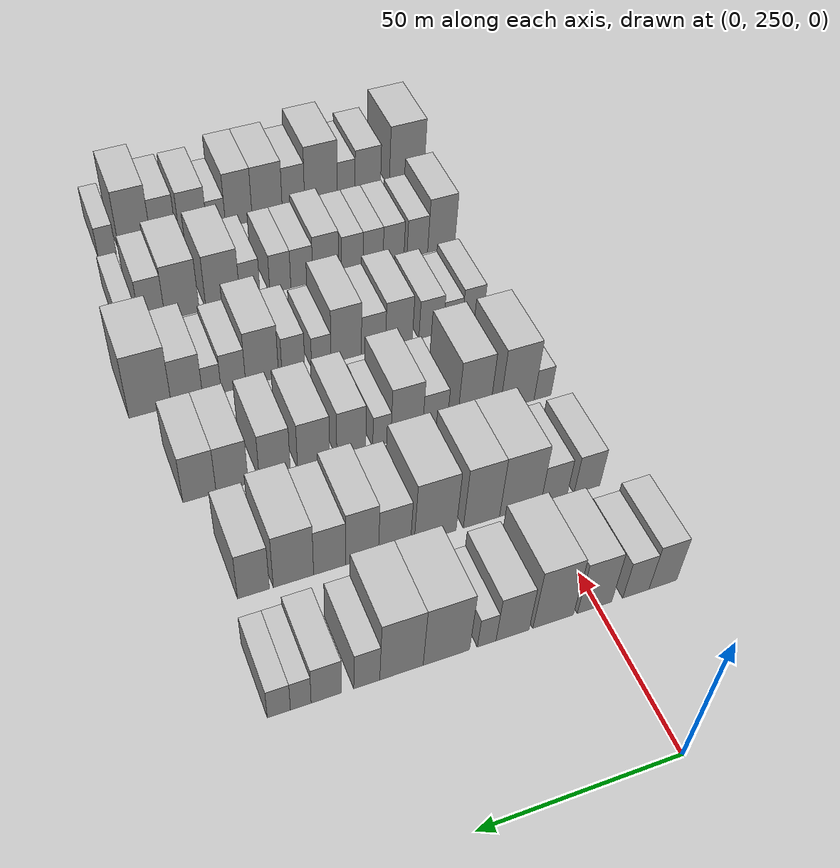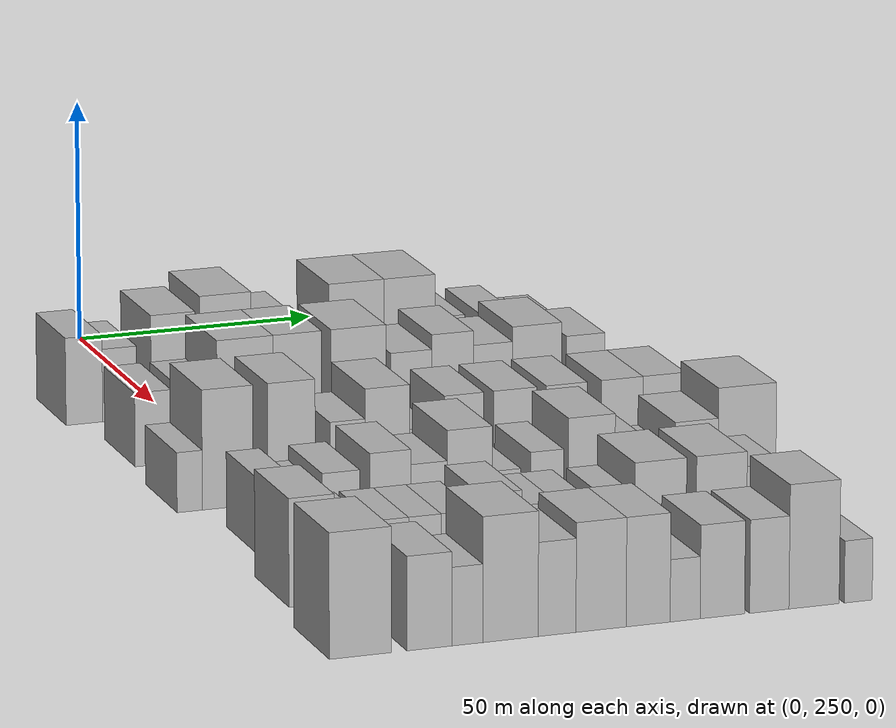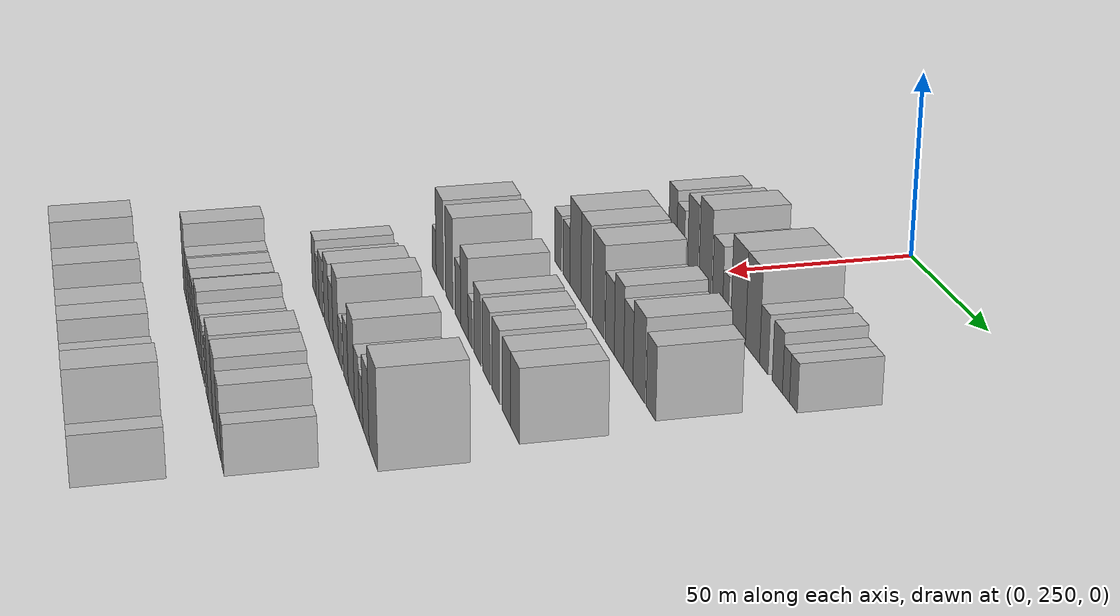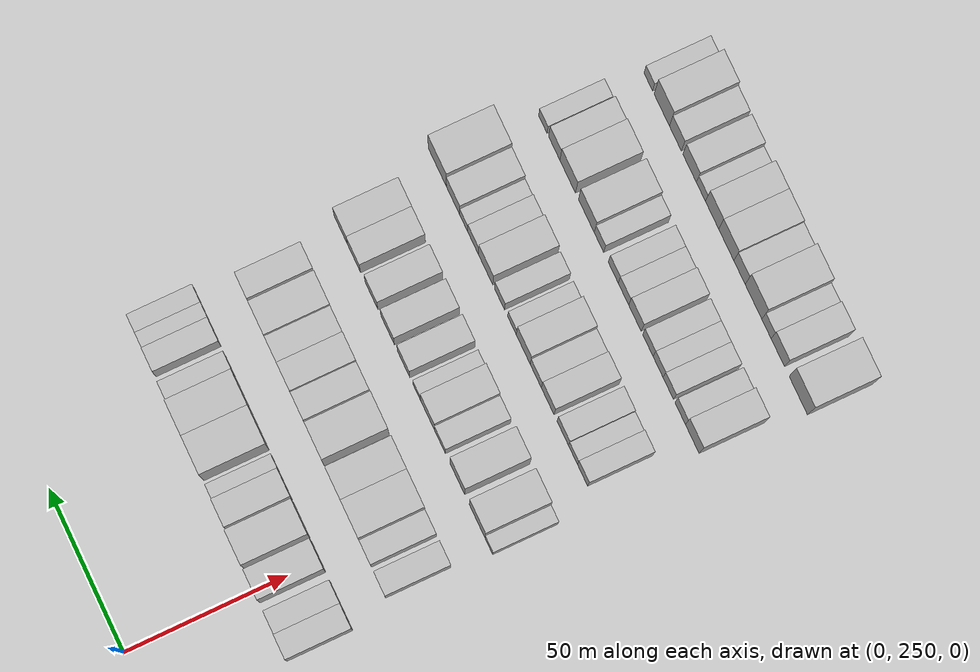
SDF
<sdf version="1.6">
 <world name="default">
  <model name="building_87">
   <static>1</static>
   <pose>50.0000 232.3564 0 0.000000 0.000000 0.000000</pose>
   <link name="link">
    <pose>0 0 9.00 0 0 0</pose>
    <collision name="collision"><geometry><box><size>20.0000 7.6379 18.0000</size></box></geometry></collision>
    <visual name="visual">
     <cast_shadows>0</cast_shadows>
     <geometry><box><size>20.0000 7.6379 18.0000</size></box></geometry>
     <material>
      <script>
       <uri>model://HANNAS_wall/materials/scripts</uri>
       <uri>model://HANNAS_wall/materials/textures</uri>
       <name>vrc/HANNAS_wall</name>
      </script>
     </material>
    </visual>
   </link>
  </model>
  <model name="building_88">
   <static>1</static>
   <pose>50.0000 239.7600 0 0.000000 0.000000 0.000000</pose>
   <link name="link">
    <pose>0 0 7.50 0 0 0</pose>
    <collision name="collision"><geometry><box><size>20.0000 7.1695 15.0000</size></box></geometry></collision>
    <visual name="visual">
     <cast_shadows>0</cast_shadows>
     <geometry><box><size>20.0000 7.1695 15.0000</size></box></geometry>
     <material>
      <script>
       <uri>model://HANNAS_wall/materials/scripts</uri>
       <uri>model://HANNAS_wall/materials/textures</uri>
       <name>vrc/HANNAS_wall</name>
      </script>
     </material>
    </visual>
   </link>
  </model>
  <model name="building_89">
   <static>1</static>
   <pose>50.0000 250.9808 0 0.000000 0.000000 0.000000</pose>
   <link name="link">
    <pose>0 0 10.50 0 0 0</pose>
    <collision name="collision"><geometry><box><size>20.0000 9.2720 21.0000</size></box></geometry></collision>
    <visual name="visual">
     <cast_shadows>0</cast_shadows>
     <geometry><box><size>20.0000 9.2720 21.0000</size></box></geometry>
     <material>
      <script>
       <uri>model://HANNAS_wall/materials/scripts</uri>
       <uri>model://HANNAS_wall/materials/textures</uri>
       <name>vrc/HANNAS_wall</name>
      </script>
     </material>
    </visual>
   </link>
  </model>
  <model name="building_90">
   <static>1</static>
   <pose>50.0000 261.9958 0 0.000000 0.000000 0.000000</pose>
   <link name="link">
    <pose>0 0 12.00 0 0 0</pose>
    <collision name="collision"><geometry><box><size>20.0000 10.7581 24.0000</size></box></geometry></collision>
    <visual name="visual">
     <cast_shadows>0</cast_shadows>
     <geometry><box><size>20.0000 10.7581 24.0000</size></box></geometry>
     <material>
      <script>
       <uri>model://HANNAS_wall/materials/scripts</uri>
       <uri>model://HANNAS_wall/materials/textures</uri>
       <name>vrc/HANNAS_wall</name>
      </script>
     </material>
    </visual>
   </link>
  </model>
  <model name="building_91">
   <static>1</static>
   <pose>50.0000 272.6833 0 0.000000 0.000000 0.000000</pose>
   <link name="link">
    <pose>0 0 9.00 0 0 0</pose>
    <collision name="collision"><geometry><box><size>20.0000 8.6168 18.0000</size></box></geometry></collision>
    <visual name="visual">
     <cast_shadows>0</cast_shadows>
     <geometry><box><size>20.0000 8.6168 18.0000</size></box></geometry>
     <material>
      <script>
       <uri>model://HANNAS_wall/materials/scripts</uri>
       <uri>model://HANNAS_wall/materials/textures</uri>
       <name>vrc/HANNAS_wall</name>
      </script>
     </material>
    </visual>
   </link>
  </model>
  <model name="building_92">
   <static>1</static>
   <pose>50.0000 279.3937 0 0.000000 0.000000 0.000000</pose>
   <link name="link">
    <pose>0 0 6.00 0 0 0</pose>
    <collision name="collision"><geometry><box><size>20.0000 4.8040 12.0000</size></box></geometry></collision>
    <visual name="visual">
     <cast_shadows>0</cast_shadows>
     <geometry><box><size>20.0000 4.8040 12.0000</size></box></geometry>
     <material>
      <script>
       <uri>model://HANNAS_wall/materials/scripts</uri>
       <uri>model://HANNAS_wall/materials/textures</uri>
       <name>vrc/HANNAS_wall</name>
      </script>
     </material>
    </visual>
   </link>
  </model>
  <model name="building_93">
   <static>1</static>
   <pose>50.0000 289.6886 0 0.000000 0.000000 0.000000</pose>
   <link name="link">
    <pose>0 0 12.00 0 0 0</pose>
    <collision name="collision"><geometry><box><size>20.0000 11.7859 24.0000</size></box></geometry></collision>
    <visual name="visual">
     <cast_shadows>0</cast_shadows>
     <geometry><box><size>20.0000 11.7859 24.0000</size></box></geometry>
     <material>
      <script>
       <uri>model://HANNAS_wall/materials/scripts</uri>
       <uri>model://HANNAS_wall/materials/textures</uri>
       <name>vrc/HANNAS_wall</name>
      </script>
     </material>
    </visual>
   </link>
  </model>
  <model name="building_94">
   <static>1</static>
   <pose>50.0000 301.0021 0 0.000000 0.000000 0.000000</pose>
   <link name="link">
    <pose>0 0 12.00 0 0 0</pose>
    <collision name="collision"><geometry><box><size>20.0000 10.8413 24.0000</size></box></geometry></collision>
    <visual name="visual">
     <cast_shadows>0</cast_shadows>
     <geometry><box><size>20.0000 10.8413 24.0000</size></box></geometry>
     <material>
      <script>
       <uri>model://HANNAS_wall/materials/scripts</uri>
       <uri>model://HANNAS_wall/materials/textures</uri>
       <name>vrc/HANNAS_wall</name>
      </script>
     </material>
    </visual>
   </link>
  </model>
  <model name="building_95">
   <static>1</static>
   <pose>50.0000 309.6219 0 0.000000 0.000000 0.000000</pose>
   <link name="link">
    <pose>0 0 7.50 0 0 0</pose>
    <collision name="collision"><geometry><box><size>20.0000 6.3983 15.0000</size></box></geometry></collision>
    <visual name="visual">
     <cast_shadows>0</cast_shadows>
     <geometry><box><size>20.0000 6.3983 15.0000</size></box></geometry>
     <material>
      <script>
       <uri>model://HANNAS_wall/materials/scripts</uri>
       <uri>model://HANNAS_wall/materials/textures</uri>
       <name>vrc/HANNAS_wall</name>
      </script>
     </material>
    </visual>
   </link>
  </model>
  <model name="building_96">
   <static>1</static>
   <pose>50.0000 319.5005 0 0.000000 0.000000 0.000000</pose>
   <link name="link">
    <pose>0 0 7.50 0 0 0</pose>
    <collision name="collision"><geometry><box><size>20.0000 7.3589 15.0000</size></box></geometry></collision>
    <visual name="visual">
     <cast_shadows>0</cast_shadows>
     <geometry><box><size>20.0000 7.3589 15.0000</size></box></geometry>
     <material>
      <script>
       <uri>model://HANNAS_wall/materials/scripts</uri>
       <uri>model://HANNAS_wall/materials/textures</uri>
       <name>vrc/HANNAS_wall</name>
      </script>
     </material>
    </visual>
   </link>
  </model>
  <model name="building_97">
   <static>1</static>
   <pose>50.0000 325.6646 0 0.000000 0.000000 0.000000</pose>
   <link name="link">
    <pose>0 0 6.00 0 0 0</pose>
    <collision name="collision"><geometry><box><size>20.0000 4.9692 12.0000</size></box></geometry></collision>
    <visual name="visual">
     <cast_shadows>0</cast_shadows>
     <geometry><box><size>20.0000 4.9692 12.0000</size></box></geometry>
     <material>
      <script>
       <uri>model://HANNAS_wall/materials/scripts</uri>
       <uri>model://HANNAS_wall/materials/textures</uri>
       <name>vrc/HANNAS_wall</name>
      </script>
     </material>
    </visual>
   </link>
  </model>
  <model name="building_98">
   <static>1</static>
   <pose>50.0000 330.9107 0 0.000000 0.000000 0.000000</pose>
   <link name="link">
    <pose>0 0 6.00 0 0 0</pose>
    <collision name="collision"><geometry><box><size>20.0000 5.5231 12.0000</size></box></geometry></collision>
    <visual name="visual">
     <cast_shadows>0</cast_shadows>
     <geometry><box><size>20.0000 5.5231 12.0000</size></box></geometry>
     <material>
      <script>
       <uri>model://HANNAS_wall/materials/scripts</uri>
       <uri>model://HANNAS_wall/materials/textures</uri>
       <name>vrc/HANNAS_wall</name>
      </script>
     </material>
    </visual>
   </link>
  </model>
  <model name="building_210">
   <static>1</static>
   <pose>82.0000 236.5430 0 0.000000 0.000000 0.000000</pose>
   <link name="link">
    <pose>0 0 7.50 0 0 0</pose>
    <collision name="collision"><geometry><box><size>20.0000 7.4599 15.0000</size></box></geometry></collision>
    <visual name="visual">
     <cast_shadows>0</cast_shadows>
     <geometry><box><size>20.0000 7.4599 15.0000</size></box></geometry>
     <material>
      <script>
       <uri>model://HANNAS_wall/materials/scripts</uri>
       <uri>model://HANNAS_wall/materials/textures</uri>
       <name>vrc/HANNAS_wall</name>
      </script>
     </material>
    </visual>
   </link>
  </model>
  <model name="building_211">
   <static>1</static>
   <pose>82.0000 246.0062 0 0.000000 0.000000 0.000000</pose>
   <link name="link">
    <pose>0 0 7.50 0 0 0</pose>
    <collision name="collision"><geometry><box><size>20.0000 7.4666 15.0000</size></box></geometry></collision>
    <visual name="visual">
     <cast_shadows>0</cast_shadows>
     <geometry><box><size>20.0000 7.4666 15.0000</size></box></geometry>
     <material>
      <script>
       <uri>model://HANNAS_wall/materials/scripts</uri>
       <uri>model://HANNAS_wall/materials/textures</uri>
       <name>vrc/HANNAS_wall</name>
      </script>
     </material>
    </visual>
   </link>
  </model>
  <model name="building_212">
   <static>1</static>
   <pose>82.0000 255.5413 0 0.000000 0.000000 0.000000</pose>
   <link name="link">
    <pose>0 0 12.00 0 0 0</pose>
    <collision name="collision"><geometry><box><size>20.0000 11.6035 24.0000</size></box></geometry></collision>
    <visual name="visual">
     <cast_shadows>0</cast_shadows>
     <geometry><box><size>20.0000 11.6035 24.0000</size></box></geometry>
     <material>
      <script>
       <uri>model://HANNAS_wall/materials/scripts</uri>
       <uri>model://HANNAS_wall/materials/textures</uri>
       <name>vrc/HANNAS_wall</name>
      </script>
     </material>
    </visual>
   </link>
  </model>
  <model name="building_213">
   <static>1</static>
   <pose>82.0000 266.3607 0 0.000000 0.000000 0.000000</pose>
   <link name="link">
    <pose>0 0 12.00 0 0 0</pose>
    <collision name="collision"><geometry><box><size>20.0000 10.0354 24.0000</size></box></geometry></collision>
    <visual name="visual">
     <cast_shadows>0</cast_shadows>
     <geometry><box><size>20.0000 10.0354 24.0000</size></box></geometry>
     <material>
      <script>
       <uri>model://HANNAS_wall/materials/scripts</uri>
       <uri>model://HANNAS_wall/materials/textures</uri>
       <name>vrc/HANNAS_wall</name>
      </script>
     </material>
    </visual>
   </link>
  </model>
  <model name="building_214">
   <static>1</static>
   <pose>82.0000 279.0757 0 0.000000 0.000000 0.000000</pose>
   <link name="link">
    <pose>0 0 12.00 0 0 0</pose>
    <collision name="collision"><geometry><box><size>20.0000 11.3946 24.0000</size></box></geometry></collision>
    <visual name="visual">
     <cast_shadows>0</cast_shadows>
     <geometry><box><size>20.0000 11.3946 24.0000</size></box></geometry>
     <material>
      <script>
       <uri>model://HANNAS_wall/materials/scripts</uri>
       <uri>model://HANNAS_wall/materials/textures</uri>
       <name>vrc/HANNAS_wall</name>
      </script>
     </material>
    </visual>
   </link>
  </model>
  <model name="building_215">
   <static>1</static>
   <pose>82.0000 290.0755 0 0.000000 0.000000 0.000000</pose>
   <link name="link">
    <pose>0 0 9.00 0 0 0</pose>
    <collision name="collision"><geometry><box><size>20.0000 8.6048 18.0000</size></box></geometry></collision>
    <visual name="visual">
     <cast_shadows>0</cast_shadows>
     <geometry><box><size>20.0000 8.6048 18.0000</size></box></geometry>
     <material>
      <script>
       <uri>model://HANNAS_wall/materials/scripts</uri>
       <uri>model://HANNAS_wall/materials/textures</uri>
       <name>vrc/HANNAS_wall</name>
      </script>
     </material>
    </visual>
   </link>
  </model>
  <model name="building_216">
   <static>1</static>
   <pose>82.0000 298.7338 0 0.000000 0.000000 0.000000</pose>
   <link name="link">
    <pose>0 0 10.50 0 0 0</pose>
    <collision name="collision"><geometry><box><size>20.0000 8.7118 21.0000</size></box></geometry></collision>
    <visual name="visual">
     <cast_shadows>0</cast_shadows>
     <geometry><box><size>20.0000 8.7118 21.0000</size></box></geometry>
     <material>
      <script>
       <uri>model://HANNAS_wall/materials/scripts</uri>
       <uri>model://HANNAS_wall/materials/textures</uri>
       <name>vrc/HANNAS_wall</name>
      </script>
     </material>
    </visual>
   </link>
  </model>
  <model name="building_217">
   <static>1</static>
   <pose>82.0000 307.2395 0 0.000000 0.000000 0.000000</pose>
   <link name="link">
    <pose>0 0 9.00 0 0 0</pose>
    <collision name="collision"><geometry><box><size>20.0000 8.2997 18.0000</size></box></geometry></collision>
    <visual name="visual">
     <cast_shadows>0</cast_shadows>
     <geometry><box><size>20.0000 8.2997 18.0000</size></box></geometry>
     <material>
      <script>
       <uri>model://HANNAS_wall/materials/scripts</uri>
       <uri>model://HANNAS_wall/materials/textures</uri>
       <name>vrc/HANNAS_wall</name>
      </script>
     </material>
    </visual>
   </link>
  </model>
  <model name="building_218">
   <static>1</static>
   <pose>82.0000 316.5841 0 0.000000 0.000000 0.000000</pose>
   <link name="link">
    <pose>0 0 10.50 0 0 0</pose>
    <collision name="collision"><geometry><box><size>20.0000 10.3896 21.0000</size></box></geometry></collision>
    <visual name="visual">
     <cast_shadows>0</cast_shadows>
     <geometry><box><size>20.0000 10.3896 21.0000</size></box></geometry>
     <material>
      <script>
       <uri>model://HANNAS_wall/materials/scripts</uri>
       <uri>model://HANNAS_wall/materials/textures</uri>
       <name>vrc/HANNAS_wall</name>
      </script>
     </material>
    </visual>
   </link>
  </model>
  <model name="building_219">
   <static>1</static>
   <pose>82.0000 326.8329 0 0.000000 0.000000 0.000000</pose>
   <link name="link">
    <pose>0 0 9.00 0 0 0</pose>
    <collision name="collision"><geometry><box><size>20.0000 8.1081 18.0000</size></box></geometry></collision>
    <visual name="visual">
     <cast_shadows>0</cast_shadows>
     <geometry><box><size>20.0000 8.1081 18.0000</size></box></geometry>
     <material>
      <script>
       <uri>model://HANNAS_wall/materials/scripts</uri>
       <uri>model://HANNAS_wall/materials/textures</uri>
       <name>vrc/HANNAS_wall</name>
      </script>
     </material>
    </visual>
   </link>
  </model>
  <model name="building_327">
   <static>1</static>
   <pose>114.0000 233.6773 0 0.000000 0.000000 0.000000</pose>
   <link name="link">
    <pose>0 0 6.00 0 0 0</pose>
    <collision name="collision"><geometry><box><size>20.0000 5.1193 12.0000</size></box></geometry></collision>
    <visual name="visual">
     <cast_shadows>0</cast_shadows>
     <geometry><box><size>20.0000 5.1193 12.0000</size></box></geometry>
     <material>
      <script>
       <uri>model://HANNAS_wall/materials/scripts</uri>
       <uri>model://HANNAS_wall/materials/textures</uri>
       <name>vrc/HANNAS_wall</name>
      </script>
     </material>
    </visual>
   </link>
  </model>
  <model name="building_328">
   <static>1</static>
   <pose>114.0000 241.3833 0 0.000000 0.000000 0.000000</pose>
   <link name="link">
    <pose>0 0 12.00 0 0 0</pose>
    <collision name="collision"><geometry><box><size>20.0000 10.2926 24.0000</size></box></geometry></collision>
    <visual name="visual">
     <cast_shadows>0</cast_shadows>
     <geometry><box><size>20.0000 10.2926 24.0000</size></box></geometry>
     <material>
      <script>
       <uri>model://HANNAS_wall/materials/scripts</uri>
       <uri>model://HANNAS_wall/materials/textures</uri>
       <name>vrc/HANNAS_wall</name>
      </script>
     </material>
    </visual>
   </link>
  </model>
  <model name="building_329">
   <static>1</static>
   <pose>114.0000 254.3425 0 0.000000 0.000000 0.000000</pose>
   <link name="link">
    <pose>0 0 12.00 0 0 0</pose>
    <collision name="collision"><geometry><box><size>20.0000 9.6259 24.0000</size></box></geometry></collision>
    <visual name="visual">
     <cast_shadows>0</cast_shadows>
     <geometry><box><size>20.0000 9.6259 24.0000</size></box></geometry>
     <material>
      <script>
       <uri>model://HANNAS_wall/materials/scripts</uri>
       <uri>model://HANNAS_wall/materials/textures</uri>
       <name>vrc/HANNAS_wall</name>
      </script>
     </material>
    </visual>
   </link>
  </model>
  <model name="building_330">
   <static>1</static>
   <pose>114.0000 265.7468 0 0.000000 0.000000 0.000000</pose>
   <link name="link">
    <pose>0 0 7.50 0 0 0</pose>
    <collision name="collision"><geometry><box><size>20.0000 7.1826 15.0000</size></box></geometry></collision>
    <visual name="visual">
     <cast_shadows>0</cast_shadows>
     <geometry><box><size>20.0000 7.1826 15.0000</size></box></geometry>
     <material>
      <script>
       <uri>model://HANNAS_wall/materials/scripts</uri>
       <uri>model://HANNAS_wall/materials/textures</uri>
       <name>vrc/HANNAS_wall</name>
      </script>
     </material>
    </visual>
   </link>
  </model>
  <model name="building_331">
   <static>1</static>
   <pose>114.0000 273.8996 0 0.000000 0.000000 0.000000</pose>
   <link name="link">
    <pose>0 0 10.50 0 0 0</pose>
    <collision name="collision"><geometry><box><size>20.0000 9.1229 21.0000</size></box></geometry></collision>
    <visual name="visual">
     <cast_shadows>0</cast_shadows>
     <geometry><box><size>20.0000 9.1229 21.0000</size></box></geometry>
     <material>
      <script>
       <uri>model://HANNAS_wall/materials/scripts</uri>
       <uri>model://HANNAS_wall/materials/textures</uri>
       <name>vrc/HANNAS_wall</name>
      </script>
     </material>
    </visual>
   </link>
  </model>
  <model name="building_332">
   <static>1</static>
   <pose>114.0000 281.0257 0 0.000000 0.000000 0.000000</pose>
   <link name="link">
    <pose>0 0 6.00 0 0 0</pose>
    <collision name="collision"><geometry><box><size>20.0000 5.1295 12.0000</size></box></geometry></collision>
    <visual name="visual">
     <cast_shadows>0</cast_shadows>
     <geometry><box><size>20.0000 5.1295 12.0000</size></box></geometry>
     <material>
      <script>
       <uri>model://HANNAS_wall/materials/scripts</uri>
       <uri>model://HANNAS_wall/materials/textures</uri>
       <name>vrc/HANNAS_wall</name>
      </script>
     </material>
    </visual>
   </link>
  </model>
  <model name="building_333">
   <static>1</static>
   <pose>114.0000 289.6596 0 0.000000 0.000000 0.000000</pose>
   <link name="link">
    <pose>0 0 9.00 0 0 0</pose>
    <collision name="collision"><geometry><box><size>20.0000 8.1382 18.0000</size></box></geometry></collision>
    <visual name="visual">
     <cast_shadows>0</cast_shadows>
     <geometry><box><size>20.0000 8.1382 18.0000</size></box></geometry>
     <material>
      <script>
       <uri>model://HANNAS_wall/materials/scripts</uri>
       <uri>model://HANNAS_wall/materials/textures</uri>
       <name>vrc/HANNAS_wall</name>
      </script>
     </material>
    </visual>
   </link>
  </model>
  <model name="building_334">
   <static>1</static>
   <pose>114.0000 300.1911 0 0.000000 0.000000 0.000000</pose>
   <link name="link">
    <pose>0 0 9.00 0 0 0</pose>
    <collision name="collision"><geometry><box><size>20.0000 8.9248 18.0000</size></box></geometry></collision>
    <visual name="visual">
     <cast_shadows>0</cast_shadows>
     <geometry><box><size>20.0000 8.9248 18.0000</size></box></geometry>
     <material>
      <script>
       <uri>model://HANNAS_wall/materials/scripts</uri>
       <uri>model://HANNAS_wall/materials/textures</uri>
       <name>vrc/HANNAS_wall</name>
      </script>
     </material>
    </visual>
   </link>
  </model>
  <model name="building_335">
   <static>1</static>
   <pose>114.0000 310.8947 0 0.000000 0.000000 0.000000</pose>
   <link name="link">
    <pose>0 0 9.00 0 0 0</pose>
    <collision name="collision"><geometry><box><size>20.0000 8.4823 18.0000</size></box></geometry></collision>
    <visual name="visual">
     <cast_shadows>0</cast_shadows>
     <geometry><box><size>20.0000 8.4823 18.0000</size></box></geometry>
     <material>
      <script>
       <uri>model://HANNAS_wall/materials/scripts</uri>
       <uri>model://HANNAS_wall/materials/textures</uri>
       <name>vrc/HANNAS_wall</name>
      </script>
     </material>
    </visual>
   </link>
  </model>
  <model name="building_336">
   <static>1</static>
   <pose>114.0000 322.4674 0 0.000000 0.000000 0.000000</pose>
   <link name="link">
    <pose>0 0 9.00 0 0 0</pose>
    <collision name="collision"><geometry><box><size>20.0000 8.6630 18.0000</size></box></geometry></collision>
    <visual name="visual">
     <cast_shadows>0</cast_shadows>
     <geometry><box><size>20.0000 8.6630 18.0000</size></box></geometry>
     <material>
      <script>
       <uri>model://HANNAS_wall/materials/scripts</uri>
       <uri>model://HANNAS_wall/materials/textures</uri>
       <name>vrc/HANNAS_wall</name>
      </script>
     </material>
    </visual>
   </link>
  </model>
  <model name="building_337">
   <static>1</static>
   <pose>114.0000 331.2446 0 0.000000 0.000000 0.000000</pose>
   <link name="link">
    <pose>0 0 9.00 0 0 0</pose>
    <collision name="collision"><geometry><box><size>20.0000 8.8915 18.0000</size></box></geometry></collision>
    <visual name="visual">
     <cast_shadows>0</cast_shadows>
     <geometry><box><size>20.0000 8.8915 18.0000</size></box></geometry>
     <material>
      <script>
       <uri>model://HANNAS_wall/materials/scripts</uri>
       <uri>model://HANNAS_wall/materials/textures</uri>
       <name>vrc/HANNAS_wall</name>
      </script>
     </material>
    </visual>
   </link>
  </model>
  <model name="building_445">
   <static>1</static>
   <pose>146.0000 240.5138 0 0.000000 0.000000 0.000000</pose>
   <link name="link">
    <pose>0 0 7.50 0 0 0</pose>
    <collision name="collision"><geometry><box><size>20.0000 6.6674 15.0000</size></box></geometry></collision>
    <visual name="visual">
     <cast_shadows>0</cast_shadows>
     <geometry><box><size>20.0000 6.6674 15.0000</size></box></geometry>
     <material>
      <script>
       <uri>model://HANNAS_wall/materials/scripts</uri>
       <uri>model://HANNAS_wall/materials/textures</uri>
       <name>vrc/HANNAS_wall</name>
      </script>
     </material>
    </visual>
   </link>
  </model>
  <model name="building_446">
   <static>1</static>
   <pose>146.0000 246.7752 0 0.000000 0.000000 0.000000</pose>
   <link name="link">
    <pose>0 0 6.00 0 0 0</pose>
    <collision name="collision"><geometry><box><size>20.0000 5.8554 12.0000</size></box></geometry></collision>
    <visual name="visual">
     <cast_shadows>0</cast_shadows>
     <geometry><box><size>20.0000 5.8554 12.0000</size></box></geometry>
     <material>
      <script>
       <uri>model://HANNAS_wall/materials/scripts</uri>
       <uri>model://HANNAS_wall/materials/textures</uri>
       <name>vrc/HANNAS_wall</name>
      </script>
     </material>
    </visual>
   </link>
  </model>
  <model name="building_447">
   <static>1</static>
   <pose>146.0000 253.4458 0 0.000000 0.000000 0.000000</pose>
   <link name="link">
    <pose>0 0 7.50 0 0 0</pose>
    <collision name="collision"><geometry><box><size>20.0000 7.4857 15.0000</size></box></geometry></collision>
    <visual name="visual">
     <cast_shadows>0</cast_shadows>
     <geometry><box><size>20.0000 7.4857 15.0000</size></box></geometry>
     <material>
      <script>
       <uri>model://HANNAS_wall/materials/scripts</uri>
       <uri>model://HANNAS_wall/materials/textures</uri>
       <name>vrc/HANNAS_wall</name>
      </script>
     </material>
    </visual>
   </link>
  </model>
  <model name="building_448">
   <static>1</static>
   <pose>146.0000 263.3246 0 0.000000 0.000000 0.000000</pose>
   <link name="link">
    <pose>0 0 9.00 0 0 0</pose>
    <collision name="collision"><geometry><box><size>20.0000 8.2719 18.0000</size></box></geometry></collision>
    <visual name="visual">
     <cast_shadows>0</cast_shadows>
     <geometry><box><size>20.0000 8.2719 18.0000</size></box></geometry>
     <material>
      <script>
       <uri>model://HANNAS_wall/materials/scripts</uri>
       <uri>model://HANNAS_wall/materials/textures</uri>
       <name>vrc/HANNAS_wall</name>
      </script>
     </material>
    </visual>
   </link>
  </model>
  <model name="building_449">
   <static>1</static>
   <pose>146.0000 271.1163 0 0.000000 0.000000 0.000000</pose>
   <link name="link">
    <pose>0 0 7.50 0 0 0</pose>
    <collision name="collision"><geometry><box><size>20.0000 7.3114 15.0000</size></box></geometry></collision>
    <visual name="visual">
     <cast_shadows>0</cast_shadows>
     <geometry><box><size>20.0000 7.3114 15.0000</size></box></geometry>
     <material>
      <script>
       <uri>model://HANNAS_wall/materials/scripts</uri>
       <uri>model://HANNAS_wall/materials/textures</uri>
       <name>vrc/HANNAS_wall</name>
      </script>
     </material>
    </visual>
   </link>
  </model>
  <model name="building_450">
   <static>1</static>
   <pose>146.0000 279.3296 0 0.000000 0.000000 0.000000</pose>
   <link name="link">
    <pose>0 0 10.50 0 0 0</pose>
    <collision name="collision"><geometry><box><size>20.0000 9.1151 21.0000</size></box></geometry></collision>
    <visual name="visual">
     <cast_shadows>0</cast_shadows>
     <geometry><box><size>20.0000 9.1151 21.0000</size></box></geometry>
     <material>
      <script>
       <uri>model://HANNAS_wall/materials/scripts</uri>
       <uri>model://HANNAS_wall/materials/textures</uri>
       <name>vrc/HANNAS_wall</name>
      </script>
     </material>
    </visual>
   </link>
  </model>
  <model name="building_451">
   <static>1</static>
   <pose>146.0000 286.7567 0 0.000000 0.000000 0.000000</pose>
   <link name="link">
    <pose>0 0 6.00 0 0 0</pose>
    <collision name="collision"><geometry><box><size>20.0000 5.7392 12.0000</size></box></geometry></collision>
    <visual name="visual">
     <cast_shadows>0</cast_shadows>
     <geometry><box><size>20.0000 5.7392 12.0000</size></box></geometry>
     <material>
      <script>
       <uri>model://HANNAS_wall/materials/scripts</uri>
       <uri>model://HANNAS_wall/materials/textures</uri>
       <name>vrc/HANNAS_wall</name>
      </script>
     </material>
    </visual>
   </link>
  </model>
  <model name="building_452">
   <static>1</static>
   <pose>146.0000 294.9730 0 0.000000 0.000000 0.000000</pose>
   <link name="link">
    <pose>0 0 7.50 0 0 0</pose>
    <collision name="collision"><geometry><box><size>20.0000 6.6934 15.0000</size></box></geometry></collision>
    <visual name="visual">
     <cast_shadows>0</cast_shadows>
     <geometry><box><size>20.0000 6.6934 15.0000</size></box></geometry>
     <material>
      <script>
       <uri>model://HANNAS_wall/materials/scripts</uri>
       <uri>model://HANNAS_wall/materials/textures</uri>
       <name>vrc/HANNAS_wall</name>
      </script>
     </material>
    </visual>
   </link>
  </model>
  <model name="building_453">
   <static>1</static>
   <pose>146.0000 304.0727 0 0.000000 0.000000 0.000000</pose>
   <link name="link">
    <pose>0 0 10.50 0 0 0</pose>
    <collision name="collision"><geometry><box><size>20.0000 9.5059 21.0000</size></box></geometry></collision>
    <visual name="visual">
     <cast_shadows>0</cast_shadows>
     <geometry><box><size>20.0000 9.5059 21.0000</size></box></geometry>
     <material>
      <script>
       <uri>model://HANNAS_wall/materials/scripts</uri>
       <uri>model://HANNAS_wall/materials/textures</uri>
       <name>vrc/HANNAS_wall</name>
      </script>
     </material>
    </visual>
   </link>
  </model>
  <model name="building_454">
   <static>1</static>
   <pose>146.0000 312.3556 0 0.000000 0.000000 0.000000</pose>
   <link name="link">
    <pose>0 0 7.50 0 0 0</pose>
    <collision name="collision"><geometry><box><size>20.0000 7.0600 15.0000</size></box></geometry></collision>
    <visual name="visual">
     <cast_shadows>0</cast_shadows>
     <geometry><box><size>20.0000 7.0600 15.0000</size></box></geometry>
     <material>
      <script>
       <uri>model://HANNAS_wall/materials/scripts</uri>
       <uri>model://HANNAS_wall/materials/textures</uri>
       <name>vrc/HANNAS_wall</name>
      </script>
     </material>
    </visual>
   </link>
  </model>
  <model name="building_455">
   <static>1</static>
   <pose>146.0000 318.5296 0 0.000000 0.000000 0.000000</pose>
   <link name="link">
    <pose>0 0 6.00 0 0 0</pose>
    <collision name="collision"><geometry><box><size>20.0000 5.2879 12.0000</size></box></geometry></collision>
    <visual name="visual">
     <cast_shadows>0</cast_shadows>
     <geometry><box><size>20.0000 5.2879 12.0000</size></box></geometry>
     <material>
      <script>
       <uri>model://HANNAS_wall/materials/scripts</uri>
       <uri>model://HANNAS_wall/materials/textures</uri>
       <name>vrc/HANNAS_wall</name>
      </script>
     </material>
    </visual>
   </link>
  </model>
  <model name="building_456">
   <static>1</static>
   <pose>146.0000 325.5905 0 0.000000 0.000000 0.000000</pose>
   <link name="link">
    <pose>0 0 9.00 0 0 0</pose>
    <collision name="collision"><geometry><box><size>20.0000 8.8341 18.0000</size></box></geometry></collision>
    <visual name="visual">
     <cast_shadows>0</cast_shadows>
     <geometry><box><size>20.0000 8.8341 18.0000</size></box></geometry>
     <material>
      <script>
       <uri>model://HANNAS_wall/materials/scripts</uri>
       <uri>model://HANNAS_wall/materials/textures</uri>
       <name>vrc/HANNAS_wall</name>
      </script>
     </material>
    </visual>
   </link>
  </model>
  <model name="building_457">
   <static>1</static>
   <pose>146.0000 335.9874 0 0.000000 0.000000 0.000000</pose>
   <link name="link">
    <pose>0 0 12.00 0 0 0</pose>
    <collision name="collision"><geometry><box><size>20.0000 11.9597 24.0000</size></box></geometry></collision>
    <visual name="visual">
     <cast_shadows>0</cast_shadows>
     <geometry><box><size>20.0000 11.9597 24.0000</size></box></geometry>
     <material>
      <script>
       <uri>model://HANNAS_wall/materials/scripts</uri>
       <uri>model://HANNAS_wall/materials/textures</uri>
       <name>vrc/HANNAS_wall</name>
      </script>
     </material>
    </visual>
   </link>
  </model>
  <model name="building_565">
   <static>1</static>
   <pose>178.0000 236.7018 0 0.000000 0.000000 0.000000</pose>
   <link name="link">
    <pose>0 0 10.50 0 0 0</pose>
    <collision name="collision"><geometry><box><size>20.0000 8.8956 21.0000</size></box></geometry></collision>
    <visual name="visual">
     <cast_shadows>0</cast_shadows>
     <geometry><box><size>20.0000 8.8956 21.0000</size></box></geometry>
     <material>
      <script>
       <uri>model://HANNAS_wall/materials/scripts</uri>
       <uri>model://HANNAS_wall/materials/textures</uri>
       <name>vrc/HANNAS_wall</name>
      </script>
     </material>
    </visual>
   </link>
  </model>
  <model name="building_566">
   <static>1</static>
   <pose>178.0000 244.5434 0 0.000000 0.000000 0.000000</pose>
   <link name="link">
    <pose>0 0 7.50 0 0 0</pose>
    <collision name="collision"><geometry><box><size>20.0000 6.7876 15.0000</size></box></geometry></collision>
    <visual name="visual">
     <cast_shadows>0</cast_shadows>
     <geometry><box><size>20.0000 6.7876 15.0000</size></box></geometry>
     <material>
      <script>
       <uri>model://HANNAS_wall/materials/scripts</uri>
       <uri>model://HANNAS_wall/materials/textures</uri>
       <name>vrc/HANNAS_wall</name>
      </script>
     </material>
    </visual>
   </link>
  </model>
  <model name="building_567">
   <static>1</static>
   <pose>178.0000 252.3303 0 0.000000 0.000000 0.000000</pose>
   <link name="link">
    <pose>0 0 7.50 0 0 0</pose>
    <collision name="collision"><geometry><box><size>20.0000 6.7861 15.0000</size></box></geometry></collision>
    <visual name="visual">
     <cast_shadows>0</cast_shadows>
     <geometry><box><size>20.0000 6.7861 15.0000</size></box></geometry>
     <material>
      <script>
       <uri>model://HANNAS_wall/materials/scripts</uri>
       <uri>model://HANNAS_wall/materials/textures</uri>
       <name>vrc/HANNAS_wall</name>
      </script>
     </material>
    </visual>
   </link>
  </model>
  <model name="building_568">
   <static>1</static>
   <pose>178.0000 258.9512 0 0.000000 0.000000 0.000000</pose>
   <link name="link">
    <pose>0 0 7.50 0 0 0</pose>
    <collision name="collision"><geometry><box><size>20.0000 6.4558 15.0000</size></box></geometry></collision>
    <visual name="visual">
     <cast_shadows>0</cast_shadows>
     <geometry><box><size>20.0000 6.4558 15.0000</size></box></geometry>
     <material>
      <script>
       <uri>model://HANNAS_wall/materials/scripts</uri>
       <uri>model://HANNAS_wall/materials/textures</uri>
       <name>vrc/HANNAS_wall</name>
      </script>
     </material>
    </visual>
   </link>
  </model>
  <model name="building_569">
   <static>1</static>
   <pose>178.0000 265.5927 0 0.000000 0.000000 0.000000</pose>
   <link name="link">
    <pose>0 0 7.50 0 0 0</pose>
    <collision name="collision"><geometry><box><size>20.0000 6.8271 15.0000</size></box></geometry></collision>
    <visual name="visual">
     <cast_shadows>0</cast_shadows>
     <geometry><box><size>20.0000 6.8271 15.0000</size></box></geometry>
     <material>
      <script>
       <uri>model://HANNAS_wall/materials/scripts</uri>
       <uri>model://HANNAS_wall/materials/textures</uri>
       <name>vrc/HANNAS_wall</name>
      </script>
     </material>
    </visual>
   </link>
  </model>
  <model name="building_570">
   <static>1</static>
   <pose>178.0000 274.0606 0 0.000000 0.000000 0.000000</pose>
   <link name="link">
    <pose>0 0 9.00 0 0 0</pose>
    <collision name="collision"><geometry><box><size>20.0000 8.1088 18.0000</size></box></geometry></collision>
    <visual name="visual">
     <cast_shadows>0</cast_shadows>
     <geometry><box><size>20.0000 8.1088 18.0000</size></box></geometry>
     <material>
      <script>
       <uri>model://HANNAS_wall/materials/scripts</uri>
       <uri>model://HANNAS_wall/materials/textures</uri>
       <name>vrc/HANNAS_wall</name>
      </script>
     </material>
    </visual>
   </link>
  </model>
  <model name="building_571">
   <static>1</static>
   <pose>178.0000 281.5418 0 0.000000 0.000000 0.000000</pose>
   <link name="link">
    <pose>0 0 7.50 0 0 0</pose>
    <collision name="collision"><geometry><box><size>20.0000 6.8537 15.0000</size></box></geometry></collision>
    <visual name="visual">
     <cast_shadows>0</cast_shadows>
     <geometry><box><size>20.0000 6.8537 15.0000</size></box></geometry>
     <material>
      <script>
       <uri>model://HANNAS_wall/materials/scripts</uri>
       <uri>model://HANNAS_wall/materials/textures</uri>
       <name>vrc/HANNAS_wall</name>
      </script>
     </material>
    </visual>
   </link>
  </model>
  <model name="building_572">
   <static>1</static>
   <pose>178.0000 288.2262 0 0.000000 0.000000 0.000000</pose>
   <link name="link">
    <pose>0 0 7.50 0 0 0</pose>
    <collision name="collision"><geometry><box><size>20.0000 6.5151 15.0000</size></box></geometry></collision>
    <visual name="visual">
     <cast_shadows>0</cast_shadows>
     <geometry><box><size>20.0000 6.5151 15.0000</size></box></geometry>
     <material>
      <script>
       <uri>model://HANNAS_wall/materials/scripts</uri>
       <uri>model://HANNAS_wall/materials/textures</uri>
       <name>vrc/HANNAS_wall</name>
      </script>
     </material>
    </visual>
   </link>
  </model>
  <model name="building_573">
   <static>1</static>
   <pose>178.0000 297.5853 0 0.000000 0.000000 0.000000</pose>
   <link name="link">
    <pose>0 0 7.50 0 0 0</pose>
    <collision name="collision"><geometry><box><size>20.0000 6.2030 15.0000</size></box></geometry></collision>
    <visual name="visual">
     <cast_shadows>0</cast_shadows>
     <geometry><box><size>20.0000 6.2030 15.0000</size></box></geometry>
     <material>
      <script>
       <uri>model://HANNAS_wall/materials/scripts</uri>
       <uri>model://HANNAS_wall/materials/textures</uri>
       <name>vrc/HANNAS_wall</name>
      </script>
     </material>
    </visual>
   </link>
  </model>
  <model name="building_574">
   <static>1</static>
   <pose>178.0000 305.8516 0 0.000000 0.000000 0.000000</pose>
   <link name="link">
    <pose>0 0 10.50 0 0 0</pose>
    <collision name="collision"><geometry><box><size>20.0000 10.3296 21.0000</size></box></geometry></collision>
    <visual name="visual">
     <cast_shadows>0</cast_shadows>
     <geometry><box><size>20.0000 10.3296 21.0000</size></box></geometry>
     <material>
      <script>
       <uri>model://HANNAS_wall/materials/scripts</uri>
       <uri>model://HANNAS_wall/materials/textures</uri>
       <name>vrc/HANNAS_wall</name>
      </script>
     </material>
    </visual>
   </link>
  </model>
  <model name="building_575">
   <static>1</static>
   <pose>178.0000 318.1215 0 0.000000 0.000000 0.000000</pose>
   <link name="link">
    <pose>0 0 10.50 0 0 0</pose>
    <collision name="collision"><geometry><box><size>20.0000 10.2100 21.0000</size></box></geometry></collision>
    <visual name="visual">
     <cast_shadows>0</cast_shadows>
     <geometry><box><size>20.0000 10.2100 21.0000</size></box></geometry>
     <material>
      <script>
       <uri>model://HANNAS_wall/materials/scripts</uri>
       <uri>model://HANNAS_wall/materials/textures</uri>
       <name>vrc/HANNAS_wall</name>
      </script>
     </material>
    </visual>
   </link>
  </model>
  <model name="building_576">
   <static>1</static>
   <pose>178.0000 326.9529 0 0.000000 0.000000 0.000000</pose>
   <link name="link">
    <pose>0 0 9.00 0 0 0</pose>
    <collision name="collision"><geometry><box><size>20.0000 7.4528 18.0000</size></box></geometry></collision>
    <visual name="visual">
     <cast_shadows>0</cast_shadows>
     <geometry><box><size>20.0000 7.4528 18.0000</size></box></geometry>
     <material>
      <script>
       <uri>model://HANNAS_wall/materials/scripts</uri>
       <uri>model://HANNAS_wall/materials/textures</uri>
       <name>vrc/HANNAS_wall</name>
      </script>
     </material>
    </visual>
   </link>
  </model>
  <model name="building_577">
   <static>1</static>
   <pose>178.0000 334.4599 0 0.000000 0.000000 0.000000</pose>
   <link name="link">
    <pose>0 0 6.00 0 0 0</pose>
    <collision name="collision"><geometry><box><size>20.0000 5.5614 12.0000</size></box></geometry></collision>
    <visual name="visual">
     <cast_shadows>0</cast_shadows>
     <geometry><box><size>20.0000 5.5614 12.0000</size></box></geometry>
     <material>
      <script>
       <uri>model://HANNAS_wall/materials/scripts</uri>
       <uri>model://HANNAS_wall/materials/textures</uri>
       <name>vrc/HANNAS_wall</name>
      </script>
     </material>
    </visual>
   </link>
  </model>
  <model name="building_676">
   <static>1</static>
   <pose>210.0000 235.1549 0 0.000000 0.000000 0.000000</pose>
   <link name="link">
    <pose>0 0 12.00 0 0 0</pose>
    <collision name="collision"><geometry><box><size>20.0000 11.9066 24.0000</size></box></geometry></collision>
    <visual name="visual">
     <cast_shadows>0</cast_shadows>
     <geometry><box><size>20.0000 11.9066 24.0000</size></box></geometry>
     <material>
      <script>
       <uri>model://HANNAS_wall/materials/scripts</uri>
       <uri>model://HANNAS_wall/materials/textures</uri>
       <name>vrc/HANNAS_wall</name>
      </script>
     </material>
    </visual>
   </link>
  </model>
  <model name="building_677">
   <static>1</static>
   <pose>210.0000 248.4392 0 0.000000 0.000000 0.000000</pose>
   <link name="link">
    <pose>0 0 9.00 0 0 0</pose>
    <collision name="collision"><geometry><box><size>20.0000 8.6619 18.0000</size></box></geometry></collision>
    <visual name="visual">
     <cast_shadows>0</cast_shadows>
     <geometry><box><size>20.0000 8.6619 18.0000</size></box></geometry>
     <material>
      <script>
       <uri>model://HANNAS_wall/materials/scripts</uri>
       <uri>model://HANNAS_wall/materials/textures</uri>
       <name>vrc/HANNAS_wall</name>
      </script>
     </material>
    </visual>
   </link>
  </model>
  <model name="building_678">
   <static>1</static>
   <pose>210.0000 255.7823 0 0.000000 0.000000 0.000000</pose>
   <link name="link">
    <pose>0 0 7.50 0 0 0</pose>
    <collision name="collision"><geometry><box><size>20.0000 6.0242 15.0000</size></box></geometry></collision>
    <visual name="visual">
     <cast_shadows>0</cast_shadows>
     <geometry><box><size>20.0000 6.0242 15.0000</size></box></geometry>
     <material>
      <script>
       <uri>model://HANNAS_wall/materials/scripts</uri>
       <uri>model://HANNAS_wall/materials/textures</uri>
       <name>vrc/HANNAS_wall</name>
      </script>
     </material>
    </visual>
   </link>
  </model>
  <model name="building_679">
   <static>1</static>
   <pose>210.0000 264.1917 0 0.000000 0.000000 0.000000</pose>
   <link name="link">
    <pose>0 0 12.00 0 0 0</pose>
    <collision name="collision"><geometry><box><size>20.0000 10.7946 24.0000</size></box></geometry></collision>
    <visual name="visual">
     <cast_shadows>0</cast_shadows>
     <geometry><box><size>20.0000 10.7946 24.0000</size></box></geometry>
     <material>
      <script>
       <uri>model://HANNAS_wall/materials/scripts</uri>
       <uri>model://HANNAS_wall/materials/textures</uri>
       <name>vrc/HANNAS_wall</name>
      </script>
     </material>
    </visual>
   </link>
  </model>
  <model name="building_680">
   <static>1</static>
   <pose>210.0000 273.2741 0 0.000000 0.000000 0.000000</pose>
   <link name="link">
    <pose>0 0 9.00 0 0 0</pose>
    <collision name="collision"><geometry><box><size>20.0000 7.3703 18.0000</size></box></geometry></collision>
    <visual name="visual">
     <cast_shadows>0</cast_shadows>
     <geometry><box><size>20.0000 7.3703 18.0000</size></box></geometry>
     <material>
      <script>
       <uri>model://HANNAS_wall/materials/scripts</uri>
       <uri>model://HANNAS_wall/materials/textures</uri>
       <name>vrc/HANNAS_wall</name>
      </script>
     </material>
    </visual>
   </link>
  </model>
  <model name="building_681">
   <static>1</static>
   <pose>210.0000 281.8809 0 0.000000 0.000000 0.000000</pose>
   <link name="link">
    <pose>0 0 10.50 0 0 0</pose>
    <collision name="collision"><geometry><box><size>20.0000 9.8433 21.0000</size></box></geometry></collision>
    <visual name="visual">
     <cast_shadows>0</cast_shadows>
     <geometry><box><size>20.0000 9.8433 21.0000</size></box></geometry>
     <material>
      <script>
       <uri>model://HANNAS_wall/materials/scripts</uri>
       <uri>model://HANNAS_wall/materials/textures</uri>
       <name>vrc/HANNAS_wall</name>
      </script>
     </material>
    </visual>
   </link>
  </model>
  <model name="building_682">
   <static>1</static>
   <pose>210.0000 291.1269 0 0.000000 0.000000 0.000000</pose>
   <link name="link">
    <pose>0 0 10.50 0 0 0</pose>
    <collision name="collision"><geometry><box><size>20.0000 8.6488 21.0000</size></box></geometry></collision>
    <visual name="visual">
     <cast_shadows>0</cast_shadows>
     <geometry><box><size>20.0000 8.6488 21.0000</size></box></geometry>
     <material>
      <script>
       <uri>model://HANNAS_wall/materials/scripts</uri>
       <uri>model://HANNAS_wall/materials/textures</uri>
       <name>vrc/HANNAS_wall</name>
      </script>
     </material>
    </visual>
   </link>
  </model>
  <model name="building_683">
   <static>1</static>
   <pose>210.0000 298.4141 0 0.000000 0.000000 0.000000</pose>
   <link name="link">
    <pose>0 0 6.00 0 0 0</pose>
    <collision name="collision"><geometry><box><size>20.0000 5.9256 12.0000</size></box></geometry></collision>
    <visual name="visual">
     <cast_shadows>0</cast_shadows>
     <geometry><box><size>20.0000 5.9256 12.0000</size></box></geometry>
     <material>
      <script>
       <uri>model://HANNAS_wall/materials/scripts</uri>
       <uri>model://HANNAS_wall/materials/textures</uri>
       <name>vrc/HANNAS_wall</name>
      </script>
     </material>
    </visual>
   </link>
  </model>
  <model name="building_684">
   <static>1</static>
   <pose>210.0000 305.7785 0 0.000000 0.000000 0.000000</pose>
   <link name="link">
    <pose>0 0 9.00 0 0 0</pose>
    <collision name="collision"><geometry><box><size>20.0000 8.8030 18.0000</size></box></geometry></collision>
    <visual name="visual">
     <cast_shadows>0</cast_shadows>
     <geometry><box><size>20.0000 8.8030 18.0000</size></box></geometry>
     <material>
      <script>
       <uri>model://HANNAS_wall/materials/scripts</uri>
       <uri>model://HANNAS_wall/materials/textures</uri>
       <name>vrc/HANNAS_wall</name>
      </script>
     </material>
    </visual>
   </link>
  </model>
  <model name="building_685">
   <static>1</static>
   <pose>210.0000 315.0877 0 0.000000 0.000000 0.000000</pose>
   <link name="link">
    <pose>0 0 9.00 0 0 0</pose>
    <collision name="collision"><geometry><box><size>20.0000 7.8155 18.0000</size></box></geometry></collision>
    <visual name="visual">
     <cast_shadows>0</cast_shadows>
     <geometry><box><size>20.0000 7.8155 18.0000</size></box></geometry>
     <material>
      <script>
       <uri>model://HANNAS_wall/materials/scripts</uri>
       <uri>model://HANNAS_wall/materials/textures</uri>
       <name>vrc/HANNAS_wall</name>
      </script>
     </material>
    </visual>
   </link>
  </model>
  <model name="building_686">
   <static>1</static>
   <pose>210.0000 324.0107 0 0.000000 0.000000 0.000000</pose>
   <link name="link">
    <pose>0 0 12.00 0 0 0</pose>
    <collision name="collision"><geometry><box><size>20.0000 10.0304 24.0000</size></box></geometry></collision>
    <visual name="visual">
     <cast_shadows>0</cast_shadows>
     <geometry><box><size>20.0000 10.0304 24.0000</size></box></geometry>
     <material>
      <script>
       <uri>model://HANNAS_wall/materials/scripts</uri>
       <uri>model://HANNAS_wall/materials/textures</uri>
       <name>vrc/HANNAS_wall</name>
      </script>
     </material>
    </visual>
   </link>
  </model>
  <model name="building_687">
   <static>1</static>
   <pose>210.0000 332.8269 0 0.000000 0.000000 0.000000</pose>
   <link name="link">
    <pose>0 0 6.00 0 0 0</pose>
    <collision name="collision"><geometry><box><size>20.0000 5.6019 12.0000</size></box></geometry></collision>
    <visual name="visual">
     <cast_shadows>0</cast_shadows>
     <geometry><box><size>20.0000 5.6019 12.0000</size></box></geometry>
     <material>
      <script>
       <uri>model://HANNAS_wall/materials/scripts</uri>
       <uri>model://HANNAS_wall/materials/textures</uri>
       <name>vrc/HANNAS_wall</name>
      </script>
     </material>
    </visual>
   </link>
  </model>
 </world>
</sdf>
